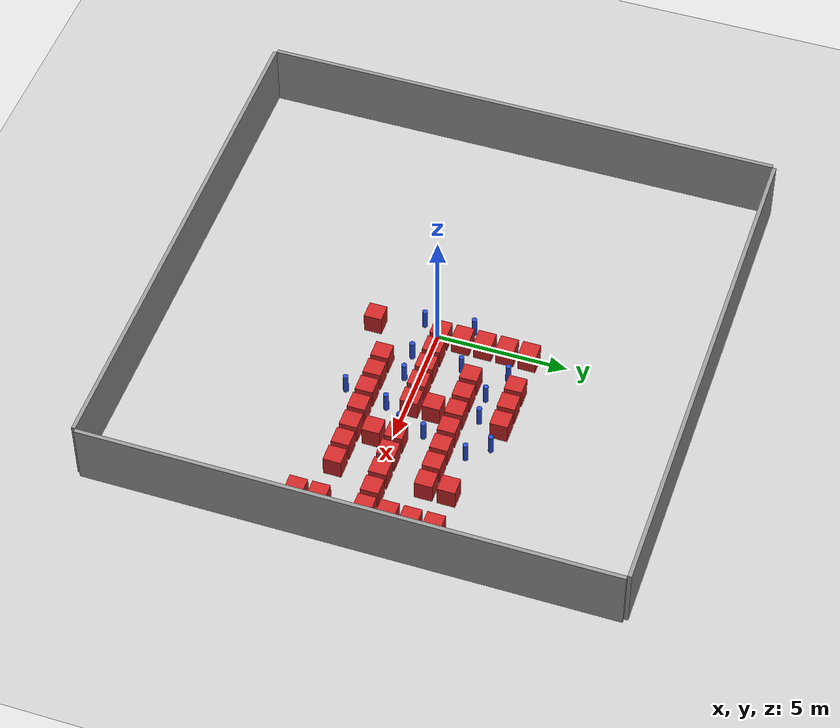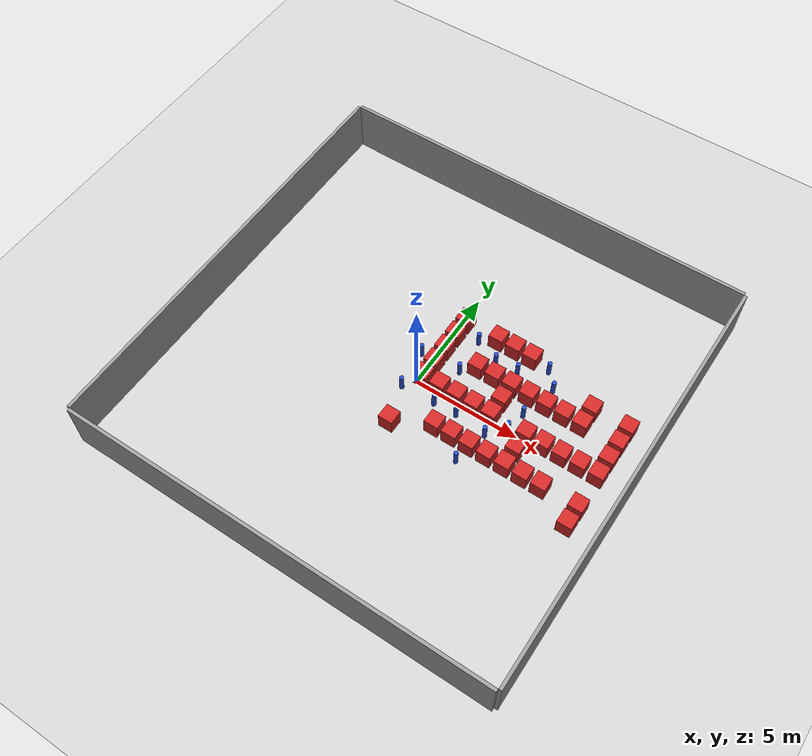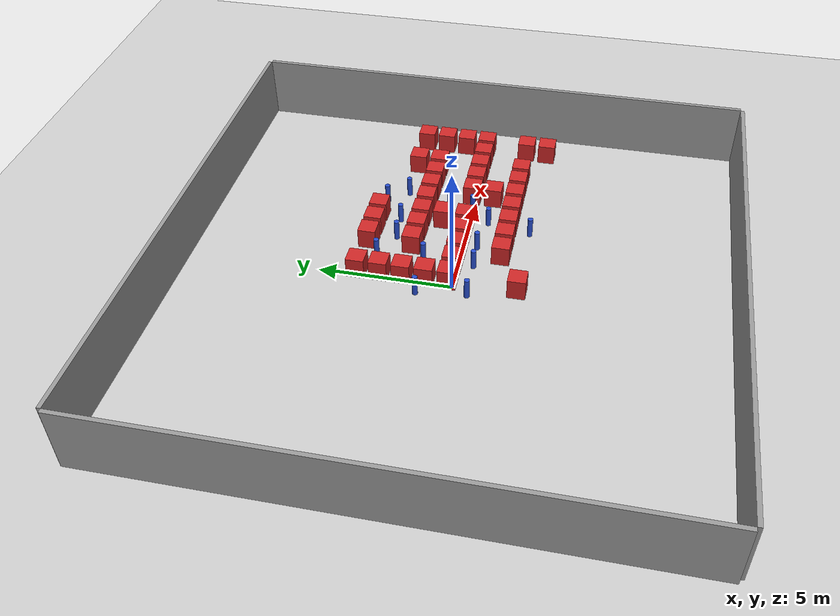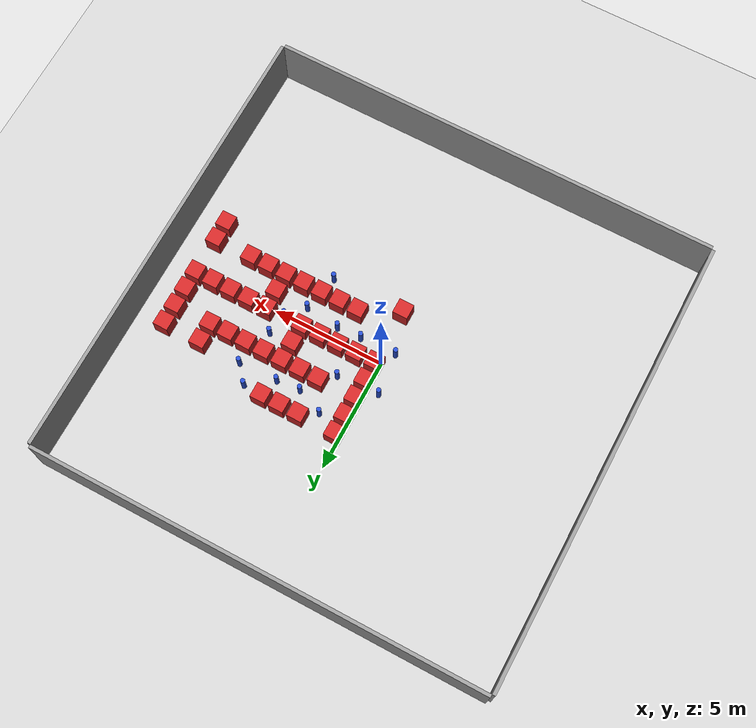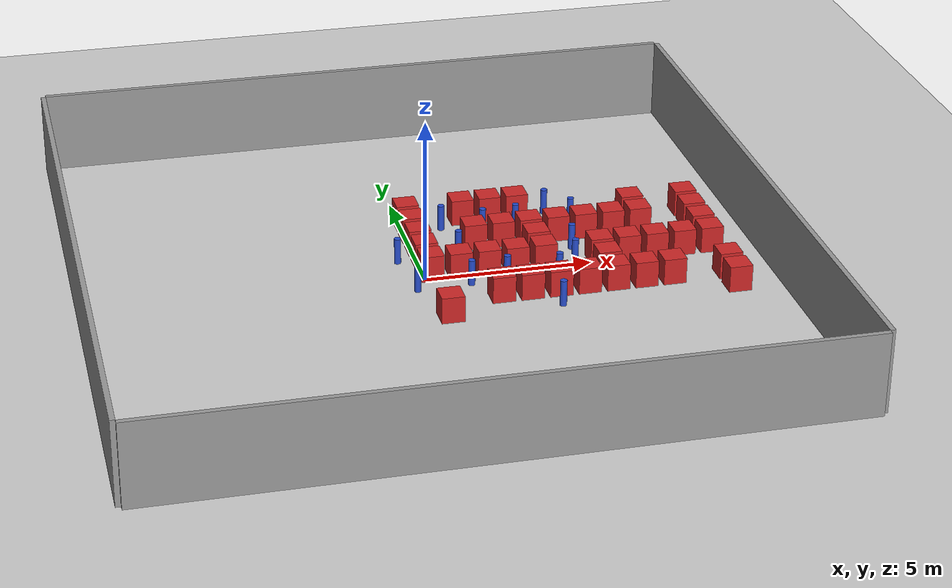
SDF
<sdf version="1.6">
 <world name="default">
  <model name="ground_plane">
   <static>1</static>
   <link name="link">
    <collision name="collision">
     <geometry><plane><normal>0 0 1</normal><size>100 100</size></plane></geometry>
     <surface><friction><ode><mu>100</mu><mu2>50</mu2></ode></friction></surface>
    </collision>
    <visual name="visual">
     <cast_shadows>0</cast_shadows>
     <geometry><plane><normal>0 0 1</normal><size>100 100</size></plane></geometry>
     <material>
      <script><uri>file://media/materials/scripts/gazebo.material</uri><name>Gazebo/Grey</name></script>
     </material>
    </visual>
   </link>
  </model>
  <model name="NamedLocations"><static>1</static><link name="DefaultStart"/></model>
  <model name="20x20_walls">
   <pose>0.044518 0.0261 0 0 -0 0</pose>
   <link name="Wall_1">
    <collision name="Wall_1_Collision">
     <geometry><box><size>20 0.15 2.5</size></box></geometry>
     <pose>0 0 1.25 0 -0 0</pose>
    </collision>
    <visual name="Wall_1_Visual">
     <pose>0 0 1.25 0 -0 0</pose>
     <geometry><box><size>20 0.15 2.5</size></box></geometry>
     <material>
      <script><uri>file://media/materials/scripts/gazebo.material</uri><name>Gazebo/Grey</name></script>
      <ambient>0.976471 0.992157 1 1</ambient>
     </material>
     <meta><layer>0</layer></meta>
    </visual>
    <pose>0 10.075 0 0 -0 0</pose>
   </link>
   <link name="Wall_3">
    <collision name="Wall_3_Collision">
     <geometry><box><size>20 0.15 2.5</size></box></geometry>
     <pose>0 0 1.25 0 -0 0</pose>
    </collision>
    <visual name="Wall_3_Visual">
     <pose>0 0 1.25 0 -0 0</pose>
     <geometry><box><size>20 0.15 2.5</size></box></geometry>
     <material>
      <script><uri>file://media/materials/scripts/gazebo.material</uri><name>Gazebo/Grey</name></script>
      <ambient>0.976471 0.992157 1 1</ambient>
     </material>
     <meta><layer>0</layer></meta>
    </visual>
    <pose>10.075 0 0 0 0 -1.5708</pose>
   </link>
   <link name="Wall_4">
    <collision name="Wall_4_Collision">
     <geometry><box><size>20 0.15 2.5</size></box></geometry>
     <pose>0 0 1.25 0 -0 0</pose>
    </collision>
    <visual name="Wall_4_Visual">
     <pose>0 0 1.25 0 -0 0</pose>
     <geometry><box><size>20 0.15 2.5</size></box></geometry>
     <material>
      <script><uri>file://media/materials/scripts/gazebo.material</uri><name>Gazebo/Grey</name></script>
      <ambient>0.976471 0.992157 1 1</ambient>
     </material>
     <meta><layer>0</layer></meta>
    </visual>
    <pose>0 -10.075 0 0 -0 3.14159</pose>
   </link>
   <link name="Wall_5">
    <collision name="Wall_5_Collision">
     <geometry><box><size>20 0.15 2.5</size></box></geometry>
     <pose>0 0 1.25 0 -0 0</pose>
    </collision>
    <visual name="Wall_5_Visual">
     <pose>0 0 1.25 0 -0 0</pose>
     <geometry><box><size>20 0.15 2.5</size></box></geometry>
     <material>
      <script><uri>file://media/materials/scripts/gazebo.material</uri><name>Gazebo/Grey</name></script>
      <ambient>0.976471 0.992157 1 1</ambient>
     </material>
     <meta><layer>0</layer></meta>
    </visual>
    <pose>-10.075 0 0 0 -0 1.5708</pose>
   </link>
   <static>1</static>
  </model>
  <model name="box_obstacle117">
   <static>0</static>
   <link name="link">
    <pose>0 0 0.1 0 -0 0</pose>
    <inertial>
     <mass>100</mass>
     <inertia>
      <ixx>0.166667</ixx>
      <ixy>0</ixy>
      <ixz>0</ixz>
      <iyy>0.166667</iyy>
      <iyz>0</iyz>
      <izz>0.166667</izz>
     </inertia>
    </inertial>
    <collision name="collision"><geometry><box><size>0.675 0.675 0.8</size></box></geometry></collision>
    <visual name="visual">
     <geometry><box><size>0.675 0.675 0.8</size></box></geometry>
     <material>
      <script><name>Gazebo/Red</name><uri>file://media/materials/scripts/gazebo.material</uri></script>
     </material>
    </visual>
   </link>
   <pose>0.19903 -2.35135 0.299996 4e-06 -0 0.001125</pose>
  </model>
  <model name="box_obstacle118">
   <static>0</static>
   <link name="link">
    <pose>0 0 0.1 0 -0 0</pose>
    <inertial>
     <mass>100</mass>
     <inertia>
      <ixx>0.166667</ixx>
      <ixy>0</ixy>
      <ixz>0</ixz>
      <iyy>0.166667</iyy>
      <iyz>0</iyz>
      <izz>0.166667</izz>
     </inertia>
    </inertial>
    <collision name="collision"><geometry><box><size>0.675 0.675 0.8</size></box></geometry></collision>
    <visual name="visual">
     <geometry><box><size>0.675 0.675 0.8</size></box></geometry>
     <material>
      <script><name>Gazebo/Red</name><uri>file://media/materials/scripts/gazebo.material</uri></script>
     </material>
    </visual>
   </link>
   <pose>0.19903 0.19865 0.299996 4e-06 -0 0.001125</pose>
  </model>
  <model name="box_obstacle119">
   <static>0</static>
   <link name="link">
    <pose>0 0 0.1 0 -0 0</pose>
    <inertial>
     <mass>100</mass>
     <inertia>
      <ixx>0.166667</ixx>
      <ixy>0</ixy>
      <ixz>0</ixz>
      <iyy>0.166667</iyy>
      <iyz>0</iyz>
      <izz>0.166667</izz>
     </inertia>
    </inertial>
    <collision name="collision"><geometry><box><size>0.675 0.675 0.8</size></box></geometry></collision>
    <visual name="visual">
     <geometry><box><size>0.675 0.675 0.8</size></box></geometry>
     <material>
      <script><name>Gazebo/Red</name><uri>file://media/materials/scripts/gazebo.material</uri></script>
     </material>
    </visual>
   </link>
   <pose>0.19903 1.04865 0.299996 4e-06 -0 0.001125</pose>
  </model>
  <model name="box_obstacle120">
   <static>0</static>
   <link name="link">
    <pose>0 0 0.1 0 -0 0</pose>
    <inertial>
     <mass>100</mass>
     <inertia>
      <ixx>0.166667</ixx>
      <ixy>0</ixy>
      <ixz>0</ixz>
      <iyy>0.166667</iyy>
      <iyz>0</iyz>
      <izz>0.166667</izz>
     </inertia>
    </inertial>
    <collision name="collision"><geometry><box><size>0.675 0.675 0.8</size></box></geometry></collision>
    <visual name="visual">
     <geometry><box><size>0.675 0.675 0.8</size></box></geometry>
     <material>
      <script><name>Gazebo/Red</name><uri>file://media/materials/scripts/gazebo.material</uri></script>
     </material>
    </visual>
   </link>
   <pose>0.19903 1.89865 0.299996 4e-06 -0 0.001125</pose>
  </model>
  <model name="box_obstacle121">
   <static>0</static>
   <link name="link">
    <pose>0 0 0.1 0 -0 0</pose>
    <inertial>
     <mass>100</mass>
     <inertia>
      <ixx>0.166667</ixx>
      <ixy>0</ixy>
      <ixz>0</ixz>
      <iyy>0.166667</iyy>
      <iyz>0</iyz>
      <izz>0.166667</izz>
     </inertia>
    </inertial>
    <collision name="collision"><geometry><box><size>0.675 0.675 0.8</size></box></geometry></collision>
    <visual name="visual">
     <geometry><box><size>0.675 0.675 0.8</size></box></geometry>
     <material>
      <script><name>Gazebo/Red</name><uri>file://media/materials/scripts/gazebo.material</uri></script>
     </material>
    </visual>
   </link>
   <pose>0.19903 2.74865 0.299996 4e-06 -0 0.001125</pose>
  </model>
  <model name="box_obstacle122">
   <static>0</static>
   <link name="link">
    <pose>0 0 0.1 0 -0 0</pose>
    <inertial>
     <mass>100</mass>
     <inertia>
      <ixx>0.166667</ixx>
      <ixy>0</ixy>
      <ixz>0</ixz>
      <iyy>0.166667</iyy>
      <iyz>0</iyz>
      <izz>0.166667</izz>
     </inertia>
    </inertial>
    <collision name="collision"><geometry><box><size>0.675 0.675 0.8</size></box></geometry></collision>
    <visual name="visual">
     <geometry><box><size>0.675 0.675 0.8</size></box></geometry>
     <material>
      <script><name>Gazebo/Red</name><uri>file://media/materials/scripts/gazebo.material</uri></script>
     </material>
    </visual>
   </link>
   <pose>0.19903 3.59865 0.299996 4e-06 -0 0.001125</pose>
  </model>
  <model name="box_obstacle130">
   <static>0</static>
   <link name="link">
    <pose>0 0 0.1 0 -0 0</pose>
    <inertial>
     <mass>100</mass>
     <inertia>
      <ixx>0.166667</ixx>
      <ixy>0</ixy>
      <ixz>0</ixz>
      <iyy>0.166667</iyy>
      <iyz>0</iyz>
      <izz>0.166667</izz>
     </inertia>
    </inertial>
    <collision name="collision"><geometry><box><size>0.675 0.675 0.8</size></box></geometry></collision>
    <visual name="visual">
     <geometry><box><size>0.675 0.675 0.8</size></box></geometry>
     <material>
      <script><name>Gazebo/Red</name><uri>file://media/materials/scripts/gazebo.material</uri></script>
     </material>
    </visual>
   </link>
   <pose>1.04903 0.19865 0.299996 4e-06 -0 0.001125</pose>
  </model>
  <model name="box_obstacle138">
   <static>0</static>
   <link name="link">
    <pose>0 0 0.1 0 -0 0</pose>
    <inertial>
     <mass>100</mass>
     <inertia>
      <ixx>0.166667</ixx>
      <ixy>0</ixy>
      <ixz>0</ixz>
      <iyy>0.166667</iyy>
      <iyz>0</iyz>
      <izz>0.166667</izz>
     </inertia>
    </inertial>
    <collision name="collision"><geometry><box><size>0.675 0.675 0.8</size></box></geometry></collision>
    <visual name="visual">
     <geometry><box><size>0.675 0.675 0.8</size></box></geometry>
     <material>
      <script><name>Gazebo/Red</name><uri>file://media/materials/scripts/gazebo.material</uri></script>
     </material>
    </visual>
   </link>
   <pose>1.89903 -1.50135 0.299996 4e-06 -0 0.001125</pose>
  </model>
  <model name="box_obstacle139">
   <static>0</static>
   <link name="link">
    <pose>0 0 0.1 0 -0 0</pose>
    <inertial>
     <mass>100</mass>
     <inertia>
      <ixx>0.166667</ixx>
      <ixy>0</ixy>
      <ixz>0</ixz>
      <iyy>0.166667</iyy>
      <iyz>0</iyz>
      <izz>0.166667</izz>
     </inertia>
    </inertial>
    <collision name="collision"><geometry><box><size>0.675 0.675 0.8</size></box></geometry></collision>
    <visual name="visual">
     <geometry><box><size>0.675 0.675 0.8</size></box></geometry>
     <material>
      <script><name>Gazebo/Red</name><uri>file://media/materials/scripts/gazebo.material</uri></script>
     </material>
    </visual>
   </link>
   <pose>1.89903 0.19865 0.299996 4e-06 -0 0.001125</pose>
  </model>
  <model name="box_obstacle140">
   <static>0</static>
   <link name="link">
    <pose>0 0 0.1 0 -0 0</pose>
    <inertial>
     <mass>100</mass>
     <inertia>
      <ixx>0.166667</ixx>
      <ixy>0</ixy>
      <ixz>0</ixz>
      <iyy>0.166667</iyy>
      <iyz>0</iyz>
      <izz>0.166667</izz>
     </inertia>
    </inertial>
    <collision name="collision"><geometry><box><size>0.675 0.675 0.8</size></box></geometry></collision>
    <visual name="visual">
     <geometry><box><size>0.675 0.675 0.8</size></box></geometry>
     <material>
      <script><name>Gazebo/Red</name><uri>file://media/materials/scripts/gazebo.material</uri></script>
     </material>
    </visual>
   </link>
   <pose>1.89903 1.89865 0.299996 4e-06 -0 0.001125</pose>
  </model>
  <model name="box_obstacle141">
   <static>0</static>
   <link name="link">
    <pose>0 0 0.1 0 -0 0</pose>
    <inertial>
     <mass>100</mass>
     <inertia>
      <ixx>0.166667</ixx>
      <ixy>0</ixy>
      <ixz>0</ixz>
      <iyy>0.166667</iyy>
      <iyz>0</iyz>
      <izz>0.166667</izz>
     </inertia>
    </inertial>
    <collision name="collision"><geometry><box><size>0.675 0.675 0.8</size></box></geometry></collision>
    <visual name="visual">
     <geometry><box><size>0.675 0.675 0.8</size></box></geometry>
     <material>
      <script><name>Gazebo/Red</name><uri>file://media/materials/scripts/gazebo.material</uri></script>
     </material>
    </visual>
   </link>
   <pose>1.89903 3.59865 0.299996 4e-06 -0 0.001125</pose>
  </model>
  <model name="box_obstacle150">
   <static>0</static>
   <link name="link">
    <pose>0 0 0.1 0 -0 0</pose>
    <inertial>
     <mass>100</mass>
     <inertia>
      <ixx>0.166667</ixx>
      <ixy>0</ixy>
      <ixz>0</ixz>
      <iyy>0.166667</iyy>
      <iyz>0</iyz>
      <izz>0.166667</izz>
     </inertia>
    </inertial>
    <collision name="collision"><geometry><box><size>0.675 0.675 0.8</size></box></geometry></collision>
    <visual name="visual">
     <geometry><box><size>0.675 0.675 0.8</size></box></geometry>
     <material>
      <script><name>Gazebo/Red</name><uri>file://media/materials/scripts/gazebo.material</uri></script>
     </material>
    </visual>
   </link>
   <pose>2.74903 -1.50135 0.299996 4e-06 -0 0.001125</pose>
  </model>
  <model name="box_obstacle151">
   <static>0</static>
   <link name="link">
    <pose>0 0 0.1 0 -0 0</pose>
    <inertial>
     <mass>100</mass>
     <inertia>
      <ixx>0.166667</ixx>
      <ixy>0</ixy>
      <ixz>0</ixz>
      <iyy>0.166667</iyy>
      <iyz>0</iyz>
      <izz>0.166667</izz>
     </inertia>
    </inertial>
    <collision name="collision"><geometry><box><size>0.675 0.675 0.8</size></box></geometry></collision>
    <visual name="visual">
     <geometry><box><size>0.675 0.675 0.8</size></box></geometry>
     <material>
      <script><name>Gazebo/Red</name><uri>file://media/materials/scripts/gazebo.material</uri></script>
     </material>
    </visual>
   </link>
   <pose>2.74903 0.19865 0.299996 4e-06 -0 0.001125</pose>
  </model>
  <model name="box_obstacle152">
   <static>0</static>
   <link name="link">
    <pose>0 0 0.1 0 -0 0</pose>
    <inertial>
     <mass>100</mass>
     <inertia>
      <ixx>0.166667</ixx>
      <ixy>0</ixy>
      <ixz>0</ixz>
      <iyy>0.166667</iyy>
      <iyz>0</iyz>
      <izz>0.166667</izz>
     </inertia>
    </inertial>
    <collision name="collision"><geometry><box><size>0.675 0.675 0.8</size></box></geometry></collision>
    <visual name="visual">
     <geometry><box><size>0.675 0.675 0.8</size></box></geometry>
     <material>
      <script><name>Gazebo/Red</name><uri>file://media/materials/scripts/gazebo.material</uri></script>
     </material>
    </visual>
   </link>
   <pose>2.74903 1.89865 0.299996 4e-06 -0 0.001125</pose>
  </model>
  <model name="box_obstacle153">
   <static>0</static>
   <link name="link">
    <pose>0 0 0.1 0 -0 0</pose>
    <inertial>
     <mass>100</mass>
     <inertia>
      <ixx>0.166667</ixx>
      <ixy>0</ixy>
      <ixz>0</ixz>
      <iyy>0.166667</iyy>
      <iyz>0</iyz>
      <izz>0.166667</izz>
     </inertia>
    </inertial>
    <collision name="collision"><geometry><box><size>0.675 0.675 0.8</size></box></geometry></collision>
    <visual name="visual">
     <geometry><box><size>0.675 0.675 0.8</size></box></geometry>
     <material>
      <script><name>Gazebo/Red</name><uri>file://media/materials/scripts/gazebo.material</uri></script>
     </material>
    </visual>
   </link>
   <pose>2.74903 3.59865 0.299996 4e-06 -0 0.001125</pose>
  </model>
  <model name="box_obstacle162">
   <static>0</static>
   <link name="link">
    <pose>0 0 0.1 0 -0 0</pose>
    <inertial>
     <mass>100</mass>
     <inertia>
      <ixx>0.166667</ixx>
      <ixy>0</ixy>
      <ixz>0</ixz>
      <iyy>0.166667</iyy>
      <iyz>0</iyz>
      <izz>0.166667</izz>
     </inertia>
    </inertial>
    <collision name="collision"><geometry><box><size>0.675 0.675 0.8</size></box></geometry></collision>
    <visual name="visual">
     <geometry><box><size>0.675 0.675 0.8</size></box></geometry>
     <material>
      <script><name>Gazebo/Red</name><uri>file://media/materials/scripts/gazebo.material</uri></script>
     </material>
    </visual>
   </link>
   <pose>3.59903 -1.50135 0.299996 4e-06 -0 0.001125</pose>
  </model>
  <model name="box_obstacle163">
   <static>0</static>
   <link name="link">
    <pose>0 0 0.1 0 -0 0</pose>
    <inertial>
     <mass>100</mass>
     <inertia>
      <ixx>0.166667</ixx>
      <ixy>0</ixy>
      <ixz>0</ixz>
      <iyy>0.166667</iyy>
      <iyz>0</iyz>
      <izz>0.166667</izz>
     </inertia>
    </inertial>
    <collision name="collision"><geometry><box><size>0.675 0.675 0.8</size></box></geometry></collision>
    <visual name="visual">
     <geometry><box><size>0.675 0.675 0.8</size></box></geometry>
     <material>
      <script><name>Gazebo/Red</name><uri>file://media/materials/scripts/gazebo.material</uri></script>
     </material>
    </visual>
   </link>
   <pose>3.59903 0.19865 0.299996 4e-06 -0 0.001125</pose>
  </model>
  <model name="box_obstacle164">
   <static>0</static>
   <link name="link">
    <pose>0 0 0.1 0 -0 0</pose>
    <inertial>
     <mass>100</mass>
     <inertia>
      <ixx>0.166667</ixx>
      <ixy>0</ixy>
      <ixz>0</ixz>
      <iyy>0.166667</iyy>
      <iyz>0</iyz>
      <izz>0.166667</izz>
     </inertia>
    </inertial>
    <collision name="collision"><geometry><box><size>0.675 0.675 0.8</size></box></geometry></collision>
    <visual name="visual">
     <geometry><box><size>0.675 0.675 0.8</size></box></geometry>
     <material>
      <script><name>Gazebo/Red</name><uri>file://media/materials/scripts/gazebo.material</uri></script>
     </material>
    </visual>
   </link>
   <pose>3.59903 1.04865 0.299996 4e-06 -0 0.001125</pose>
  </model>
  <model name="box_obstacle165">
   <static>0</static>
   <link name="link">
    <pose>0 0 0.1 0 -0 0</pose>
    <inertial>
     <mass>100</mass>
     <inertia>
      <ixx>0.166667</ixx>
      <ixy>0</ixy>
      <ixz>0</ixz>
      <iyy>0.166667</iyy>
      <iyz>0</iyz>
      <izz>0.166667</izz>
     </inertia>
    </inertial>
    <collision name="collision"><geometry><box><size>0.675 0.675 0.8</size></box></geometry></collision>
    <visual name="visual">
     <geometry><box><size>0.675 0.675 0.8</size></box></geometry>
     <material>
      <script><name>Gazebo/Red</name><uri>file://media/materials/scripts/gazebo.material</uri></script>
     </material>
    </visual>
   </link>
   <pose>3.59903 1.89865 0.299996 4e-06 -0 0.001125</pose>
  </model>
  <model name="box_obstacle166">
   <static>0</static>
   <link name="link">
    <pose>0 0 0.1 0 -0 0</pose>
    <inertial>
     <mass>100</mass>
     <inertia>
      <ixx>0.166667</ixx>
      <ixy>0</ixy>
      <ixz>0</ixz>
      <iyy>0.166667</iyy>
      <iyz>0</iyz>
      <izz>0.166667</izz>
     </inertia>
    </inertial>
    <collision name="collision"><geometry><box><size>0.675 0.675 0.8</size></box></geometry></collision>
    <visual name="visual">
     <geometry><box><size>0.675 0.675 0.8</size></box></geometry>
     <material>
      <script><name>Gazebo/Red</name><uri>file://media/materials/scripts/gazebo.material</uri></script>
     </material>
    </visual>
   </link>
   <pose>3.59903 3.59865 0.299996 4e-06 -0 0.001125</pose>
  </model>
  <model name="box_obstacle173">
   <static>0</static>
   <link name="link">
    <pose>0 0 0.1 0 -0 0</pose>
    <inertial>
     <mass>100</mass>
     <inertia>
      <ixx>0.166667</ixx>
      <ixy>0</ixy>
      <ixz>0</ixz>
      <iyy>0.166667</iyy>
      <iyz>0</iyz>
      <izz>0.166667</izz>
     </inertia>
    </inertial>
    <collision name="collision"><geometry><box><size>0.675 0.675 0.8</size></box></geometry></collision>
    <visual name="visual">
     <geometry><box><size>0.675 0.675 0.8</size></box></geometry>
     <material>
      <script><name>Gazebo/Red</name><uri>file://media/materials/scripts/gazebo.material</uri></script>
     </material>
    </visual>
   </link>
   <pose>4.44903 -1.50135 0.299996 4e-06 -0 0.001125</pose>
  </model>
  <model name="box_obstacle174">
   <static>0</static>
   <link name="link">
    <pose>0 0 0.1 0 -0 0</pose>
    <inertial>
     <mass>100</mass>
     <inertia>
      <ixx>0.166667</ixx>
      <ixy>0</ixy>
      <ixz>0</ixz>
      <iyy>0.166667</iyy>
      <iyz>0</iyz>
      <izz>0.166667</izz>
     </inertia>
    </inertial>
    <collision name="collision"><geometry><box><size>0.675 0.675 0.8</size></box></geometry></collision>
    <visual name="visual">
     <geometry><box><size>0.675 0.675 0.8</size></box></geometry>
     <material>
      <script><name>Gazebo/Red</name><uri>file://media/materials/scripts/gazebo.material</uri></script>
     </material>
    </visual>
   </link>
   <pose>4.44903 1.89865 0.299996 4e-06 -0 0.001125</pose>
  </model>
  <model name="box_obstacle181">
   <static>0</static>
   <link name="link">
    <pose>0 0 0.1 0 -0 0</pose>
    <inertial>
     <mass>100</mass>
     <inertia>
      <ixx>0.166667</ixx>
      <ixy>0</ixy>
      <ixz>0</ixz>
      <iyy>0.166667</iyy>
      <iyz>0</iyz>
      <izz>0.166667</izz>
     </inertia>
    </inertial>
    <collision name="collision"><geometry><box><size>0.675 0.675 0.8</size></box></geometry></collision>
    <visual name="visual">
     <geometry><box><size>0.675 0.675 0.8</size></box></geometry>
     <material>
      <script><name>Gazebo/Red</name><uri>file://media/materials/scripts/gazebo.material</uri></script>
     </material>
    </visual>
   </link>
   <pose>5.29903 -1.50135 0.299996 4e-06 -0 0.001125</pose>
  </model>
  <model name="box_obstacle182">
   <static>0</static>
   <link name="link">
    <pose>0 0 0.1 0 -0 0</pose>
    <inertial>
     <mass>100</mass>
     <inertia>
      <ixx>0.166667</ixx>
      <ixy>0</ixy>
      <ixz>0</ixz>
      <iyy>0.166667</iyy>
      <iyz>0</iyz>
      <izz>0.166667</izz>
     </inertia>
    </inertial>
    <collision name="collision"><geometry><box><size>0.675 0.675 0.8</size></box></geometry></collision>
    <visual name="visual">
     <geometry><box><size>0.675 0.675 0.8</size></box></geometry>
     <material>
      <script><name>Gazebo/Red</name><uri>file://media/materials/scripts/gazebo.material</uri></script>
     </material>
    </visual>
   </link>
   <pose>5.29903 -0.65135 0.299996 4e-06 -0 0.001125</pose>
  </model>
  <model name="box_obstacle183">
   <static>0</static>
   <link name="link">
    <pose>0 0 0.1 0 -0 0</pose>
    <inertial>
     <mass>100</mass>
     <inertia>
      <ixx>0.166667</ixx>
      <ixy>0</ixy>
      <ixz>0</ixz>
      <iyy>0.166667</iyy>
      <iyz>0</iyz>
      <izz>0.166667</izz>
     </inertia>
    </inertial>
    <collision name="collision"><geometry><box><size>0.675 0.675 0.8</size></box></geometry></collision>
    <visual name="visual">
     <geometry><box><size>0.675 0.675 0.8</size></box></geometry>
     <material>
      <script><name>Gazebo/Red</name><uri>file://media/materials/scripts/gazebo.material</uri></script>
     </material>
    </visual>
   </link>
   <pose>5.29903 0.19865 0.299996 4e-06 -0 0.001125</pose>
  </model>
  <model name="box_obstacle184">
   <static>0</static>
   <link name="link">
    <pose>0 0 0.1 0 -0 0</pose>
    <inertial>
     <mass>100</mass>
     <inertia>
      <ixx>0.166667</ixx>
      <ixy>0</ixy>
      <ixz>0</ixz>
      <iyy>0.166667</iyy>
      <iyz>0</iyz>
      <izz>0.166667</izz>
     </inertia>
    </inertial>
    <collision name="collision"><geometry><box><size>0.675 0.675 0.8</size></box></geometry></collision>
    <visual name="visual">
     <geometry><box><size>0.675 0.675 0.8</size></box></geometry>
     <material>
      <script><name>Gazebo/Red</name><uri>file://media/materials/scripts/gazebo.material</uri></script>
     </material>
    </visual>
   </link>
   <pose>5.29903 1.89865 0.299996 4e-06 -0 0.001125</pose>
  </model>
  <model name="box_obstacle194">
   <static>0</static>
   <link name="link">
    <pose>0 0 0.1 0 -0 0</pose>
    <inertial>
     <mass>100</mass>
     <inertia>
      <ixx>0.166667</ixx>
      <ixy>0</ixy>
      <ixz>0</ixz>
      <iyy>0.166667</iyy>
      <iyz>0</iyz>
      <izz>0.166667</izz>
     </inertia>
    </inertial>
    <collision name="collision"><geometry><box><size>0.675 0.675 0.8</size></box></geometry></collision>
    <visual name="visual">
     <geometry><box><size>0.675 0.675 0.8</size></box></geometry>
     <material>
      <script><name>Gazebo/Red</name><uri>file://media/materials/scripts/gazebo.material</uri></script>
     </material>
    </visual>
   </link>
   <pose>6.14903 -1.50135 0.299996 4e-06 -0 0.001125</pose>
  </model>
  <model name="box_obstacle195">
   <static>0</static>
   <link name="link">
    <pose>0 0 0.1 0 -0 0</pose>
    <inertial>
     <mass>100</mass>
     <inertia>
      <ixx>0.166667</ixx>
      <ixy>0</ixy>
      <ixz>0</ixz>
      <iyy>0.166667</iyy>
      <iyz>0</iyz>
      <izz>0.166667</izz>
     </inertia>
    </inertial>
    <collision name="collision"><geometry><box><size>0.675 0.675 0.8</size></box></geometry></collision>
    <visual name="visual">
     <geometry><box><size>0.675 0.675 0.8</size></box></geometry>
     <material>
      <script><name>Gazebo/Red</name><uri>file://media/materials/scripts/gazebo.material</uri></script>
     </material>
    </visual>
   </link>
   <pose>6.14903 0.19865 0.299996 4e-06 -0 0.001125</pose>
  </model>
  <model name="box_obstacle196">
   <static>0</static>
   <link name="link">
    <pose>0 0 0.1 0 -0 0</pose>
    <inertial>
     <mass>100</mass>
     <inertia>
      <ixx>0.166667</ixx>
      <ixy>0</ixy>
      <ixz>0</ixz>
      <iyy>0.166667</iyy>
      <iyz>0</iyz>
      <izz>0.166667</izz>
     </inertia>
    </inertial>
    <collision name="collision"><geometry><box><size>0.675 0.675 0.8</size></box></geometry></collision>
    <visual name="visual">
     <geometry><box><size>0.675 0.675 0.8</size></box></geometry>
     <material>
      <script><name>Gazebo/Red</name><uri>file://media/materials/scripts/gazebo.material</uri></script>
     </material>
    </visual>
   </link>
   <pose>6.14903 1.89865 0.299996 4e-06 -0 0.001125</pose>
  </model>
  <model name="box_obstacle204">
   <static>0</static>
   <link name="link">
    <pose>0 0 0.1 0 -0 0</pose>
    <inertial>
     <mass>100</mass>
     <inertia>
      <ixx>0.166667</ixx>
      <ixy>0</ixy>
      <ixz>0</ixz>
      <iyy>0.166667</iyy>
      <iyz>0</iyz>
      <izz>0.166667</izz>
     </inertia>
    </inertial>
    <collision name="collision"><geometry><box><size>0.675 0.675 0.8</size></box></geometry></collision>
    <visual name="visual">
     <geometry><box><size>0.675 0.675 0.8</size></box></geometry>
     <material>
      <script><name>Gazebo/Red</name><uri>file://media/materials/scripts/gazebo.material</uri></script>
     </material>
    </visual>
   </link>
   <pose>6.99903 -1.50135 0.299996 4e-06 -0 0.001125</pose>
  </model>
  <model name="box_obstacle205">
   <static>0</static>
   <link name="link">
    <pose>0 0 0.1 0 -0 0</pose>
    <inertial>
     <mass>100</mass>
     <inertia>
      <ixx>0.166667</ixx>
      <ixy>0</ixy>
      <ixz>0</ixz>
      <iyy>0.166667</iyy>
      <iyz>0</iyz>
      <izz>0.166667</izz>
     </inertia>
    </inertial>
    <collision name="collision"><geometry><box><size>0.675 0.675 0.8</size></box></geometry></collision>
    <visual name="visual">
     <geometry><box><size>0.675 0.675 0.8</size></box></geometry>
     <material>
      <script><name>Gazebo/Red</name><uri>file://media/materials/scripts/gazebo.material</uri></script>
     </material>
    </visual>
   </link>
   <pose>6.99903 0.19865 0.299996 4e-06 -0 0.001125</pose>
  </model>
  <model name="box_obstacle206">
   <static>0</static>
   <link name="link">
    <pose>0 0 0.1 0 -0 0</pose>
    <inertial>
     <mass>100</mass>
     <inertia>
      <ixx>0.166667</ixx>
      <ixy>0</ixy>
      <ixz>0</ixz>
      <iyy>0.166667</iyy>
      <iyz>0</iyz>
      <izz>0.166667</izz>
     </inertia>
    </inertial>
    <collision name="collision"><geometry><box><size>0.675 0.675 0.8</size></box></geometry></collision>
    <visual name="visual">
     <geometry><box><size>0.675 0.675 0.8</size></box></geometry>
     <material>
      <script><name>Gazebo/Red</name><uri>file://media/materials/scripts/gazebo.material</uri></script>
     </material>
    </visual>
   </link>
   <pose>6.99903 1.89865 0.299996 4e-06 -0 0.001125</pose>
  </model>
  <model name="box_obstacle207">
   <static>0</static>
   <link name="link">
    <pose>0 0 0.1 0 -0 0</pose>
    <inertial>
     <mass>100</mass>
     <inertia>
      <ixx>0.166667</ixx>
      <ixy>0</ixy>
      <ixz>0</ixz>
      <iyy>0.166667</iyy>
      <iyz>0</iyz>
      <izz>0.166667</izz>
     </inertia>
    </inertial>
    <collision name="collision"><geometry><box><size>0.675 0.675 0.8</size></box></geometry></collision>
    <visual name="visual">
     <geometry><box><size>0.675 0.675 0.8</size></box></geometry>
     <material>
      <script><name>Gazebo/Red</name><uri>file://media/materials/scripts/gazebo.material</uri></script>
     </material>
    </visual>
   </link>
   <pose>6.99903 2.74865 0.299996 4e-06 -0 0.001125</pose>
  </model>
  <model name="box_obstacle218">
   <static>0</static>
   <link name="link">
    <pose>0 0 0.1 0 -0 0</pose>
    <inertial>
     <mass>100</mass>
     <inertia>
      <ixx>0.166667</ixx>
      <ixy>0</ixy>
      <ixz>0</ixz>
      <iyy>0.166667</iyy>
      <iyz>0</iyz>
      <izz>0.166667</izz>
     </inertia>
    </inertial>
    <collision name="collision"><geometry><box><size>0.675 0.675 0.8</size></box></geometry></collision>
    <visual name="visual">
     <geometry><box><size>0.675 0.675 0.8</size></box></geometry>
     <material>
      <script><name>Gazebo/Red</name><uri>file://media/materials/scripts/gazebo.material</uri></script>
     </material>
    </visual>
   </link>
   <pose>7.84903 0.19865 0.299996 4e-06 -0 0.001125</pose>
  </model>
  <model name="box_obstacle227">
   <static>0</static>
   <link name="link">
    <pose>0 0 0.1 0 -0 0</pose>
    <inertial>
     <mass>100</mass>
     <inertia>
      <ixx>0.166667</ixx>
      <ixy>0</ixy>
      <ixz>0</ixz>
      <iyy>0.166667</iyy>
      <iyz>0</iyz>
      <izz>0.166667</izz>
     </inertia>
    </inertial>
    <collision name="collision"><geometry><box><size>0.675 0.675 0.8</size></box></geometry></collision>
    <visual name="visual">
     <geometry><box><size>0.675 0.675 0.8</size></box></geometry>
     <material>
      <script><name>Gazebo/Red</name><uri>file://media/materials/scripts/gazebo.material</uri></script>
     </material>
    </visual>
   </link>
   <pose>8.69903 -2.35135 0.299996 4e-06 -0 0.001125</pose>
  </model>
  <model name="box_obstacle228">
   <static>0</static>
   <link name="link">
    <pose>0 0 0.1 0 -0 0</pose>
    <inertial>
     <mass>100</mass>
     <inertia>
      <ixx>0.166667</ixx>
      <ixy>0</ixy>
      <ixz>0</ixz>
      <iyy>0.166667</iyy>
      <iyz>0</iyz>
      <izz>0.166667</izz>
     </inertia>
    </inertial>
    <collision name="collision"><geometry><box><size>0.675 0.675 0.8</size></box></geometry></collision>
    <visual name="visual">
     <geometry><box><size>0.675 0.675 0.8</size></box></geometry>
     <material>
      <script><name>Gazebo/Red</name><uri>file://media/materials/scripts/gazebo.material</uri></script>
     </material>
    </visual>
   </link>
   <pose>8.69903 -1.50135 0.299996 4e-06 -0 0.001125</pose>
  </model>
  <model name="box_obstacle229">
   <static>0</static>
   <link name="link">
    <pose>0 0 0.1 0 -0 0</pose>
    <inertial>
     <mass>100</mass>
     <inertia>
      <ixx>0.166667</ixx>
      <ixy>0</ixy>
      <ixz>0</ixz>
      <iyy>0.166667</iyy>
      <iyz>0</iyz>
      <izz>0.166667</izz>
     </inertia>
    </inertial>
    <collision name="collision"><geometry><box><size>0.675 0.675 0.8</size></box></geometry></collision>
    <visual name="visual">
     <geometry><box><size>0.675 0.675 0.8</size></box></geometry>
     <material>
      <script><name>Gazebo/Red</name><uri>file://media/materials/scripts/gazebo.material</uri></script>
     </material>
    </visual>
   </link>
   <pose>8.69903 0.19865 0.299996 4e-06 -0 0.001125</pose>
  </model>
  <model name="box_obstacle230">
   <static>0</static>
   <link name="link">
    <pose>0 0 0.1 0 -0 0</pose>
    <inertial>
     <mass>100</mass>
     <inertia>
      <ixx>0.166667</ixx>
      <ixy>0</ixy>
      <ixz>0</ixz>
      <iyy>0.166667</iyy>
      <iyz>0</iyz>
      <izz>0.166667</izz>
     </inertia>
    </inertial>
    <collision name="collision"><geometry><box><size>0.675 0.675 0.8</size></box></geometry></collision>
    <visual name="visual">
     <geometry><box><size>0.675 0.675 0.8</size></box></geometry>
     <material>
      <script><name>Gazebo/Red</name><uri>file://media/materials/scripts/gazebo.material</uri></script>
     </material>
    </visual>
   </link>
   <pose>8.69903 1.04865 0.299996 4e-06 -0 0.001125</pose>
  </model>
  <model name="box_obstacle231">
   <static>0</static>
   <link name="link">
    <pose>0 0 0.1 0 -0 0</pose>
    <inertial>
     <mass>100</mass>
     <inertia>
      <ixx>0.166667</ixx>
      <ixy>0</ixy>
      <ixz>0</ixz>
      <iyy>0.166667</iyy>
      <iyz>0</iyz>
      <izz>0.166667</izz>
     </inertia>
    </inertial>
    <collision name="collision"><geometry><box><size>0.675 0.675 0.8</size></box></geometry></collision>
    <visual name="visual">
     <geometry><box><size>0.675 0.675 0.8</size></box></geometry>
     <material>
      <script><name>Gazebo/Red</name><uri>file://media/materials/scripts/gazebo.material</uri></script>
     </material>
    </visual>
   </link>
   <pose>8.69903 1.89865 0.299996 4e-06 -0 0.001125</pose>
  </model>
  <model name="box_obstacle232">
   <static>0</static>
   <link name="link">
    <pose>0 0 0.1 0 -0 0</pose>
    <inertial>
     <mass>100</mass>
     <inertia>
      <ixx>0.166667</ixx>
      <ixy>0</ixy>
      <ixz>0</ixz>
      <iyy>0.166667</iyy>
      <iyz>0</iyz>
      <izz>0.166667</izz>
     </inertia>
    </inertial>
    <collision name="collision"><geometry><box><size>0.675 0.675 0.8</size></box></geometry></collision>
    <visual name="visual">
     <geometry><box><size>0.675 0.675 0.8</size></box></geometry>
     <material>
      <script><name>Gazebo/Red</name><uri>file://media/materials/scripts/gazebo.material</uri></script>
     </material>
    </visual>
   </link>
   <pose>8.69903 2.74865 0.299996 4e-06 -0 0.001125</pose>
  </model>
  <model name="cylinder_obstacle5">
   <static>0</static>
   <link name="link">
    <pose>0 0 1 0 -0 0</pose>
    <inertial>
     <mass>100</mass>
     <inertia>
      <ixx>0.166667</ixx>
      <ixy>0</ixy>
      <ixz>0</ixz>
      <iyy>0.166667</iyy>
      <iyz>0</iyz>
      <izz>0.166667</izz>
     </inertia>
    </inertial>
    <collision name="collision">
     <geometry><cylinder><radius>0.1</radius><length>0.8</length></cylinder></geometry>
    </collision>
    <visual name="visual">
     <geometry><cylinder><radius>0.1</radius><length>0.8</length></cylinder></geometry>
     <material>
      <script><name>Gazebo/Blue</name><uri>file://media/materials/scripts/gazebo.material</uri></script>
     </material>
    </visual>
   </link>
   <pose>4.50725 3.5017 -0.6 3e-06 1e-06 0.003884</pose>
  </model>
  <model name="cylinder_obstacle9">
   <static>0</static>
   <link name="link">
    <pose>0 0 1 0 -0 0</pose>
    <inertial>
     <mass>100</mass>
     <inertia>
      <ixx>0.166667</ixx>
      <ixy>0</ixy>
      <ixz>0</ixz>
      <iyy>0.166667</iyy>
      <iyz>0</iyz>
      <izz>0.166667</izz>
     </inertia>
    </inertial>
    <collision name="collision">
     <geometry><cylinder><radius>0.1</radius><length>0.8</length></cylinder></geometry>
    </collision>
    <visual name="visual">
     <geometry><cylinder><radius>0.1</radius><length>0.8</length></cylinder></geometry>
     <material>
      <script><name>Gazebo/Blue</name><uri>file://media/materials/scripts/gazebo.material</uri></script>
     </material>
    </visual>
   </link>
   <pose>1.24754 -0.561149 -0.6 3e-06 1e-06 0.003884</pose>
  </model>
  <model name="cylinder_obstacle19">
   <static>0</static>
   <link name="link">
    <pose>0 0 1 0 -0 0</pose>
    <inertial>
     <mass>100</mass>
     <inertia>
      <ixx>0.166667</ixx>
      <ixy>0</ixy>
      <ixz>0</ixz>
      <iyy>0.166667</iyy>
      <iyz>0</iyz>
      <izz>0.166667</izz>
     </inertia>
    </inertial>
    <collision name="collision">
     <geometry><cylinder><radius>0.1</radius><length>0.8</length></cylinder></geometry>
    </collision>
    <visual name="visual">
     <geometry><cylinder><radius>0.1</radius><length>0.8</length></cylinder></geometry>
     <material>
      <script><name>Gazebo/Blue</name><uri>file://media/materials/scripts/gazebo.material</uri></script>
     </material>
    </visual>
   </link>
   <pose>5.14224 2.75592 -0.6 3e-06 1e-06 0.003884</pose>
  </model>
  <model name="cylinder_obstacle22">
   <static>0</static>
   <link name="link">
    <pose>0 0 1 0 -0 0</pose>
    <inertial>
     <mass>100</mass>
     <inertia>
      <ixx>0.166667</ixx>
      <ixy>0</ixy>
      <ixz>0</ixz>
      <iyy>0.166667</iyy>
      <iyz>0</iyz>
      <izz>0.166667</izz>
     </inertia>
    </inertial>
    <collision name="collision">
     <geometry><cylinder><radius>0.1</radius><length>0.8</length></cylinder></geometry>
    </collision>
    <visual name="visual">
     <geometry><cylinder><radius>0.1</radius><length>0.8</length></cylinder></geometry>
     <material>
      <script><name>Gazebo/Blue</name><uri>file://media/materials/scripts/gazebo.material</uri></script>
     </material>
    </visual>
   </link>
   <pose>-0.361396 -0.610512 -0.6 3e-06 1e-06 0.003884</pose>
  </model>
  <model name="cylinder_obstacle25">
   <static>0</static>
   <link name="link">
    <pose>0 0 1 0 -0 0</pose>
    <inertial>
     <mass>100</mass>
     <inertia>
      <ixx>0.166667</ixx>
      <ixy>0</ixy>
      <ixz>0</ixz>
      <iyy>0.166667</iyy>
      <iyz>0</iyz>
      <izz>0.166667</izz>
     </inertia>
    </inertial>
    <collision name="collision">
     <geometry><cylinder><radius>0.1</radius><length>0.8</length></cylinder></geometry>
    </collision>
    <visual name="visual">
     <geometry><cylinder><radius>0.1</radius><length>0.8</length></cylinder></geometry>
     <material>
      <script><name>Gazebo/Blue</name><uri>file://media/materials/scripts/gazebo.material</uri></script>
     </material>
    </visual>
   </link>
   <pose>1.18635 3.1073 -0.6 3e-06 1e-06 0.003884</pose>
  </model>
  <model name="cylinder_obstacle26">
   <static>0</static>
   <link name="link">
    <pose>0 0 1 0 -0 0</pose>
    <inertial>
     <mass>100</mass>
     <inertia>
      <ixx>0.166667</ixx>
      <ixy>0</ixy>
      <ixz>0</ixz>
      <iyy>0.166667</iyy>
      <iyz>0</iyz>
      <izz>0.166667</izz>
     </inertia>
    </inertial>
    <collision name="collision">
     <geometry><cylinder><radius>0.1</radius><length>0.8</length></cylinder></geometry>
    </collision>
    <visual name="visual">
     <geometry><cylinder><radius>0.1</radius><length>0.8</length></cylinder></geometry>
     <material>
      <script><name>Gazebo/Blue</name><uri>file://media/materials/scripts/gazebo.material</uri></script>
     </material>
    </visual>
   </link>
   <pose>-0.558358 1.24467 -0.6 3e-06 1e-06 0.003884</pose>
  </model>
  <model name="cylinder_obstacle32">
   <static>0</static>
   <link name="link">
    <pose>0 0 1 0 -0 0</pose>
    <inertial>
     <mass>100</mass>
     <inertia>
      <ixx>0.166667</ixx>
      <ixy>0</ixy>
      <ixz>0</ixz>
      <iyy>0.166667</iyy>
      <iyz>0</iyz>
      <izz>0.166667</izz>
     </inertia>
    </inertial>
    <collision name="collision">
     <geometry><cylinder><radius>0.1</radius><length>0.8</length></cylinder></geometry>
    </collision>
    <visual name="visual">
     <geometry><cylinder><radius>0.1</radius><length>0.8</length></cylinder></geometry>
     <material>
      <script><name>Gazebo/Blue</name><uri>file://media/materials/scripts/gazebo.material</uri></script>
     </material>
    </visual>
   </link>
   <pose>3.84386 -0.679802 -0.6 3e-06 1e-06 0.003884</pose>
  </model>
  <model name="cylinder_obstacle35">
   <static>0</static>
   <link name="link">
    <pose>0 0 1 0 -0 0</pose>
    <inertial>
     <mass>100</mass>
     <inertia>
      <ixx>0.166667</ixx>
      <ixy>0</ixy>
      <ixz>0</ixz>
      <iyy>0.166667</iyy>
      <iyz>0</iyz>
      <izz>0.166667</izz>
     </inertia>
    </inertial>
    <collision name="collision">
     <geometry><cylinder><radius>0.1</radius><length>0.8</length></cylinder></geometry>
    </collision>
    <visual name="visual">
     <geometry><cylinder><radius>0.1</radius><length>0.8</length></cylinder></geometry>
     <material>
      <script><name>Gazebo/Blue</name><uri>file://media/materials/scripts/gazebo.material</uri></script>
     </material>
    </visual>
   </link>
   <pose>4.5278 0.063912 -0.6 3e-06 1e-06 0.003884</pose>
  </model>
  <model name="cylinder_obstacle36">
   <static>0</static>
   <link name="link">
    <pose>0 0 1 0 -0 0</pose>
    <inertial>
     <mass>100</mass>
     <inertia>
      <ixx>0.166667</ixx>
      <ixy>0</ixy>
      <ixz>0</ixz>
      <iyy>0.166667</iyy>
      <iyz>0</iyz>
      <izz>0.166667</izz>
     </inertia>
    </inertial>
    <collision name="collision">
     <geometry><cylinder><radius>0.1</radius><length>0.8</length></cylinder></geometry>
    </collision>
    <visual name="visual">
     <geometry><cylinder><radius>0.1</radius><length>0.8</length></cylinder></geometry>
     <material>
      <script><name>Gazebo/Blue</name><uri>file://media/materials/scripts/gazebo.material</uri></script>
     </material>
    </visual>
   </link>
   <pose>1.31238 1.35329 -0.6 3e-06 1e-06 0.003884</pose>
  </model>
  <model name="cylinder_obstacle42">
   <static>0</static>
   <link name="link">
    <pose>0 0 1 0 -0 0</pose>
    <inertial>
     <mass>100</mass>
     <inertia>
      <ixx>0.166667</ixx>
      <ixy>0</ixy>
      <ixz>0</ixz>
      <iyy>0.166667</iyy>
      <iyz>0</iyz>
      <izz>0.166667</izz>
     </inertia>
    </inertial>
    <collision name="collision">
     <geometry><cylinder><radius>0.1</radius><length>0.8</length></cylinder></geometry>
    </collision>
    <visual name="visual">
     <geometry><cylinder><radius>0.1</radius><length>0.8</length></cylinder></geometry>
     <material>
      <script><name>Gazebo/Blue</name><uri>file://media/materials/scripts/gazebo.material</uri></script>
     </material>
    </visual>
   </link>
   <pose>3.49503 -2.35324 -0.6 3e-06 1e-06 0.003884</pose>
  </model>
  <model name="cylinder_obstacle53">
   <static>0</static>
   <link name="link">
    <pose>0 0 1 0 -0 0</pose>
    <inertial>
     <mass>100</mass>
     <inertia>
      <ixx>0.166667</ixx>
      <ixy>0</ixy>
      <ixz>0</ixz>
      <iyy>0.166667</iyy>
      <iyz>0</iyz>
      <izz>0.166667</izz>
     </inertia>
    </inertial>
    <collision name="collision">
     <geometry><cylinder><radius>0.1</radius><length>0.8</length></cylinder></geometry>
    </collision>
    <visual name="visual">
     <geometry><cylinder><radius>0.1</radius><length>0.8</length></cylinder></geometry>
     <material>
      <script><name>Gazebo/Blue</name><uri>file://media/materials/scripts/gazebo.material</uri></script>
     </material>
    </visual>
   </link>
   <pose>3.40342 2.70777 -0.6 3e-06 1e-06 0.003884</pose>
  </model>
  <model name="cylinder_obstacle72">
   <static>0</static>
   <link name="link">
    <pose>0 0 1 0 -0 0</pose>
    <inertial>
     <mass>100</mass>
     <inertia>
      <ixx>0.166667</ixx>
      <ixy>0</ixy>
      <ixz>0</ixz>
      <iyy>0.166667</iyy>
      <iyz>0</iyz>
      <izz>0.166667</izz>
     </inertia>
    </inertial>
    <collision name="collision">
     <geometry><cylinder><radius>0.1</radius><length>0.8</length></cylinder></geometry>
    </collision>
    <visual name="visual">
     <geometry><cylinder><radius>0.1</radius><length>0.8</length></cylinder></geometry>
     <material>
      <script><name>Gazebo/Blue</name><uri>file://media/materials/scripts/gazebo.material</uri></script>
     </material>
    </visual>
   </link>
   <pose>2.35619 2.61856 -0.6 3e-06 1e-06 0.003884</pose>
  </model>
  <model name="cylinder_obstacle76">
   <static>0</static>
   <link name="link">
    <pose>0 0 1 0 -0 0</pose>
    <inertial>
     <mass>100</mass>
     <inertia>
      <ixx>0.166667</ixx>
      <ixy>0</ixy>
      <ixz>0</ixz>
      <iyy>0.166667</iyy>
      <iyz>0</iyz>
      <izz>0.166667</izz>
     </inertia>
    </inertial>
    <collision name="collision">
     <geometry><cylinder><radius>0.1</radius><length>0.8</length></cylinder></geometry>
    </collision>
    <visual name="visual">
     <geometry><cylinder><radius>0.1</radius><length>0.8</length></cylinder></geometry>
     <material>
      <script><name>Gazebo/Blue</name><uri>file://media/materials/scripts/gazebo.material</uri></script>
     </material>
    </visual>
   </link>
   <pose>4.69492 1.02639 -0.6 3e-06 1e-06 0.003884</pose>
  </model>
  <model name="cylinder_obstacle93">
   <static>0</static>
   <link name="link">
    <pose>0 0 1 0 -0 0</pose>
    <inertial>
     <mass>100</mass>
     <inertia>
      <ixx>0.166667</ixx>
      <ixy>0</ixy>
      <ixz>0</ixz>
      <iyy>0.166667</iyy>
      <iyz>0</iyz>
      <izz>0.166667</izz>
     </inertia>
    </inertial>
    <collision name="collision">
     <geometry><cylinder><radius>0.1</radius><length>0.8</length></cylinder></geometry>
    </collision>
    <visual name="visual">
     <geometry><cylinder><radius>0.1</radius><length>0.8</length></cylinder></geometry>
     <material>
      <script><name>Gazebo/Blue</name><uri>file://media/materials/scripts/gazebo.material</uri></script>
     </material>
    </visual>
   </link>
   <pose>2.31968 -0.50538 -0.6 3e-06 1e-06 0.003884</pose>
  </model>
 </world>
</sdf>
